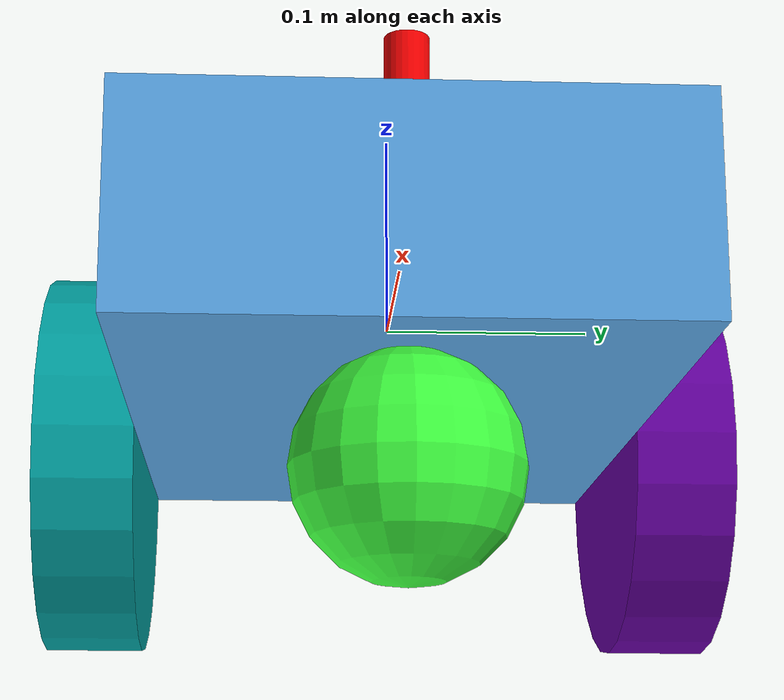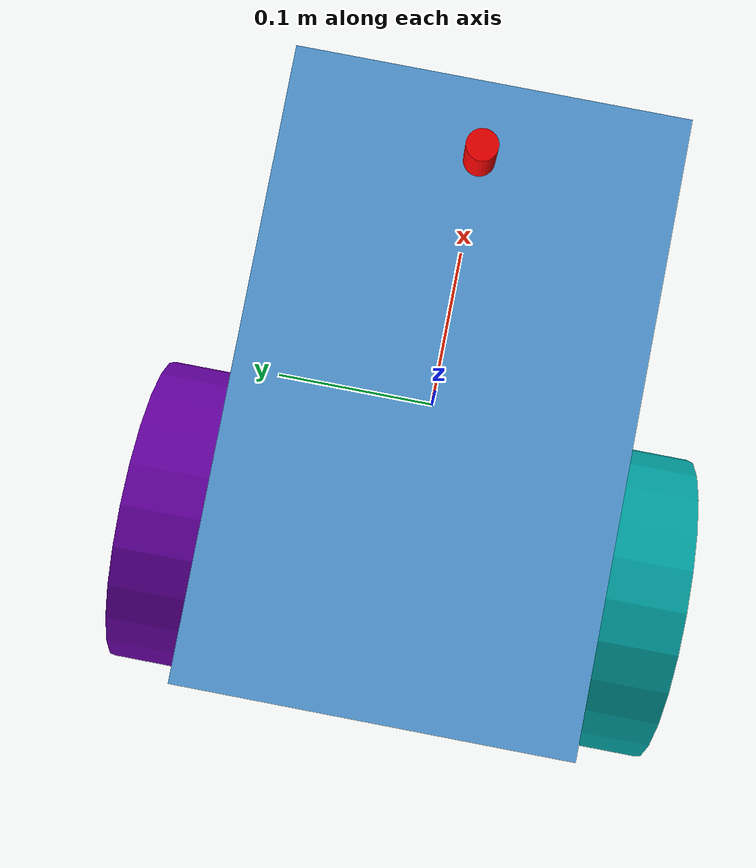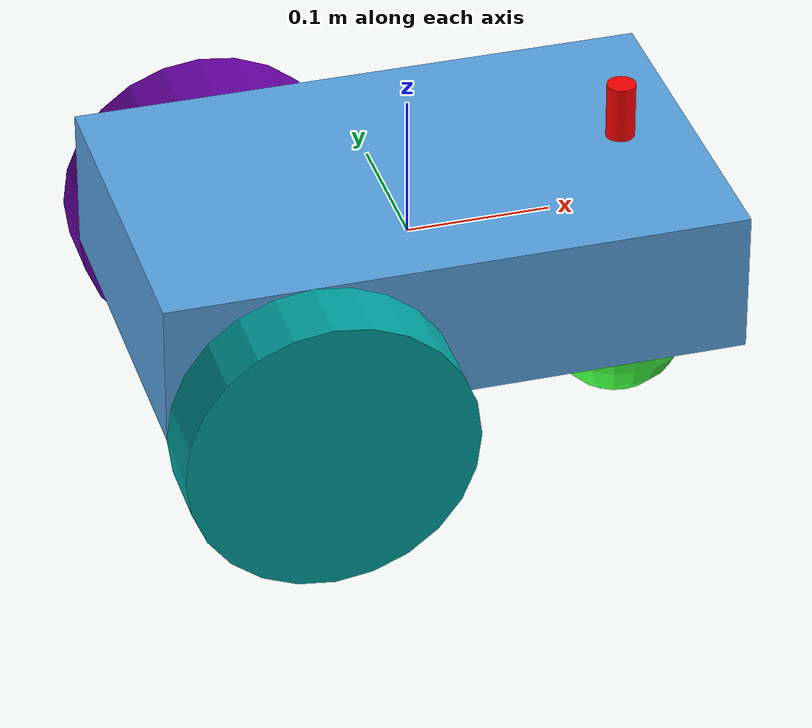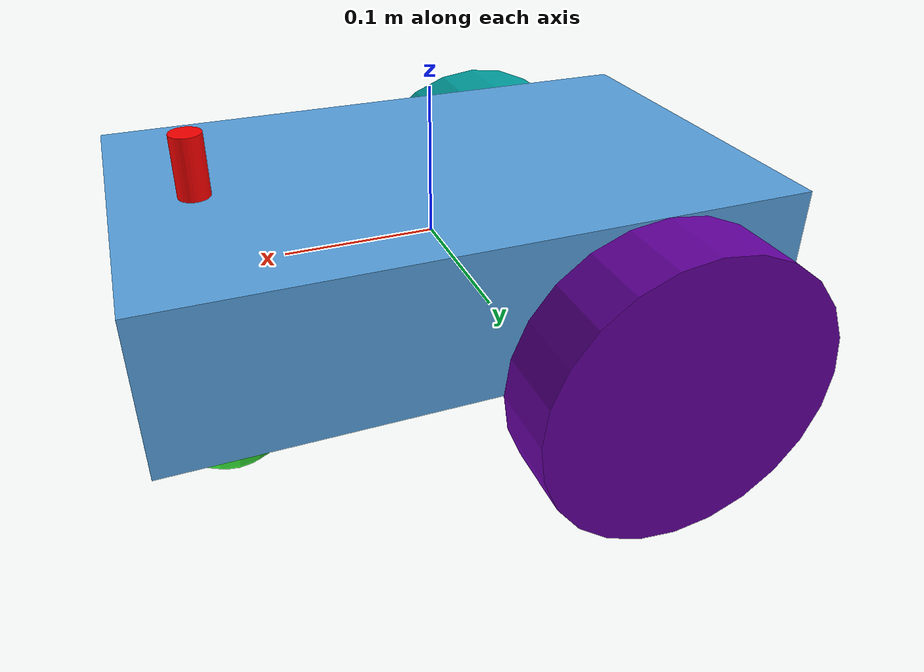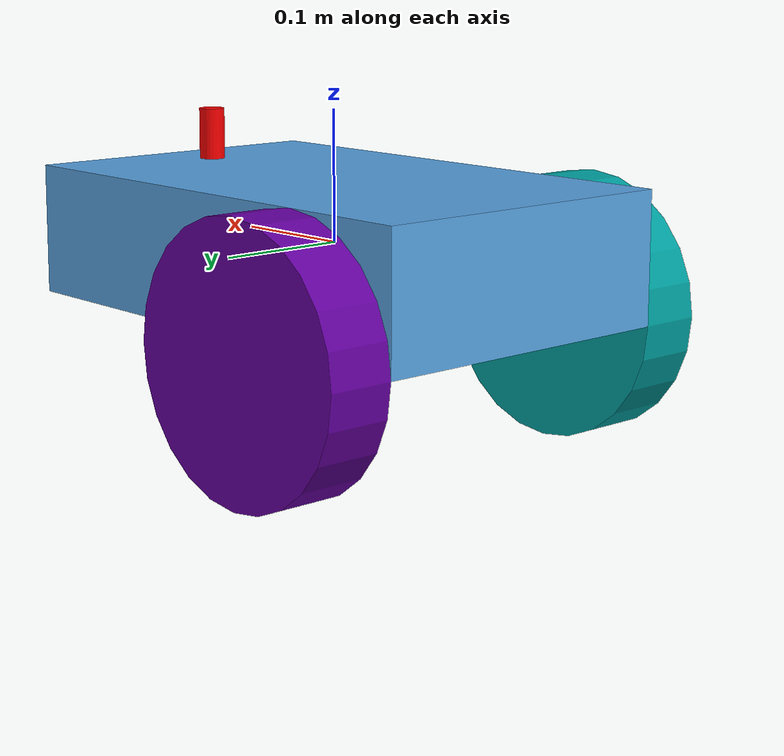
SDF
<sdf version='1.11'>
  <model name='diff_drive'>
    <link name='base_link'>
      <inertial>
        <pose>0.0084905660377358506 0 -0.004056603773584906 0 0 0</pose>
        <mass>10.6</mass>
        <inertia>
          <ixx>0.47958915173094668</ixx>
          <ixy>0</ixy>
          <ixz>0.0060849056603773594</ixz>
          <iyy>1.13013750078755</iyy>
          <iyz>0</iyz>
          <izz>1.468259434749815</izz>
        </inertia>
      </inertial>
      <collision name='base_link_collision'>
        <pose>0 0 0 0 0 0</pose>
        <geometry>
          <box>
            <size>0.40000000000000002 0.25 0.10000000000000001</size>
          </box>
        </geometry>
        <surface>
          <contact>
            <ode/>
          </contact>
          <friction>
            <ode>
              <mu>1</mu>
              <mu2>1</mu2>
            </ode>
          </friction>
        </surface>
      </collision>
      <collision name='base_link_fixed_joint_lump__diff_drive/caster_collision_1'>
        <pose>0.14999999999999999 0 -0.10000000000000001 0 0 0</pose>
        <geometry>
          <sphere>
            <radius>0.050000000000000003</radius>
          </sphere>
        </geometry>
        <surface>
          <contact>
            <ode/>
          </contact>
          <friction>
            <ode>
              <mu>9.9999999999999995e-07</mu>
              <mu2>9.9999999999999995e-07</mu2>
            </ode>
          </friction>
        </surface>
      </collision>
      <collision name='base_link_fixed_joint_lump__diff_drive/lidar_collision_2'>
        <pose>0.14999999999999999 0 0.070000000000000007 0 0 0</pose>
        <geometry>
          <cylinder>
            <length>0.040000000000000001</length>
            <radius>0.01</radius>
          </cylinder>
        </geometry>
        <surface>
          <contact>
            <ode/>
          </contact>
          <friction>
            <ode>
              <mu>1</mu>
              <mu2>1</mu2>
            </ode>
          </friction>
        </surface>
      </collision>
      <visual name='base_link_visual'>
        <pose>0 0 0 0 0 0</pose>
        <geometry>
          <box>
            <size>0.40000000000000002 0.25 0.10000000000000001</size>
          </box>
        </geometry>
        <material>
          <diffuse>0.343137264 0.637254953 0.882352948 1</diffuse>
          <ambient>0.343137264 0.637254953 0.882352948 1</ambient>
        </material>
      </visual>
      <visual name='base_link_fixed_joint_lump__diff_drive/caster_visual_1'>
        <pose>0.14999999999999999 0 -0.10000000000000001 0 0 0</pose>
        <geometry>
          <sphere>
            <radius>0.050000000000000003</radius>
          </sphere>
        </geometry>
        <material>
          <diffuse>0.24509804 1 0.24509804 1</diffuse>
          <ambient>0.24509804 1 0.24509804 1</ambient>
        </material>
      </visual>
      <visual name='base_link_fixed_joint_lump__diff_drive/lidar_visual_2'>
        <pose>0.14999999999999999 0 0.070000000000000007 0 0 0</pose>
        <geometry>
          <cylinder>
            <length>0.040000000000000001</length>
            <radius>0.01</radius>
          </cylinder>
        </geometry>
        <material>
          <diffuse>0.980392158 0 0 1</diffuse>
          <ambient>0.980392158 0 0 1</ambient>
        </material>
      </visual>
      <sensor name='lidar_sensor' type='gpu_lidar'>
        <topic>/lidar</topic>
        <update_rate>10</update_rate>
        <lidar>
          <scan>
            <horizontal>
              <samples>36</samples>
              <resolution>1</resolution>
              <min_angle>-3.1415899999999999</min_angle>
              <max_angle>3.1415899999999999</max_angle>
            </horizontal>
          </scan>
          <range>
            <min>0.10000000000000001</min>
            <max>30</max>
            <resolution>0.01</resolution>
          </range>
          <noise>
            <type>gaussian</type>
            <mean>0</mean>
            <stddev>0.01</stddev>
          </noise>
        </lidar>
        <always_on>true</always_on>
        <visualize>true</visualize>
        <pose>0.14999999999999999 0 0.070000000000000007 0 0 0</pose>
        <frame_id>lidar</frame_id>
      </sensor>
    </link>
    <joint name='left_wheel_joint' type='revolute'>
      <pose relative_to='base_link'>-0.10000000000000001 0.14999999999999999 -0.050000000000000003 0 0 0</pose>
      <parent>base_link</parent>
      <child>left_wheel</child>
      <axis>
        <xyz>0 1 0</xyz>
        <limit>
          <effort>100</effort>
          <velocity>10</velocity>
          <lower>-inf</lower>
          <upper>inf</upper>
        </limit>
        <dynamics>
          <damping>0.10000000000000001</damping>
          <friction>0.10000000000000001</friction>
          <spring_reference>0</spring_reference>
          <spring_stiffness>0</spring_stiffness>
        </dynamics>
      </axis>
    </joint>
    <link name='left_wheel'>
      <pose relative_to='left_wheel_joint'>0 0 0 0 0 0</pose>
      <inertial>
        <pose>0 0 0 1.5707949999999999 0 0</pose>
        <mass>2</mass>
        <inertia>
          <ixx>0.0038288160421875018</ixx>
          <ixy>0</ixy>
          <ixz>0</ixz>
          <iyy>0.0038288160421875018</iyy>
          <iyz>0</iyz>
          <izz>0.0070685834625000034</izz>
        </inertia>
      </inertial>
      <collision name='left_wheel_collision'>
        <pose>0 0 0 1.5707949999999999 0 0</pose>
        <geometry>
          <cylinder>
            <length>0.050000000000000003</length>
            <radius>0.10000000000000001</radius>
          </cylinder>
        </geometry>
        <surface>
          <contact>
            <ode/>
          </contact>
          <friction>
            <ode>
              <mu>1</mu>
              <mu2>1</mu2>
            </ode>
          </friction>
        </surface>
      </collision>
      <visual name='left_wheel_visual'>
        <pose>0 0 0 1.5707949999999999 0 0</pose>
        <geometry>
          <cylinder>
            <length>0.050000000000000003</length>
            <radius>0.10000000000000001</radius>
          </cylinder>
        </geometry>
        <material>
          <diffuse>0.392156869 0 0.627451003 1</diffuse>
          <ambient>0.392156869 0 0.627451003 1</ambient>
        </material>
      </visual>
    </link>
    <joint name='right_wheel_joint' type='revolute'>
      <pose relative_to='base_link'>-0.10000000000000001 -0.14999999999999999 -0.050000000000000003 0 0 0</pose>
      <parent>base_link</parent>
      <child>right_wheel</child>
      <axis>
        <xyz>0 1 0</xyz>
        <limit>
          <effort>100</effort>
          <velocity>10</velocity>
          <lower>-inf</lower>
          <upper>inf</upper>
        </limit>
        <dynamics>
          <damping>0.10000000000000001</damping>
          <friction>0.10000000000000001</friction>
          <spring_reference>0</spring_reference>
          <spring_stiffness>0</spring_stiffness>
        </dynamics>
      </axis>
    </joint>
    <link name='right_wheel'>
      <pose relative_to='right_wheel_joint'>0 0 0 0 0 0</pose>
      <inertial>
        <pose>0 0 0 1.5707949999999999 0 0</pose>
        <mass>2</mass>
        <inertia>
          <ixx>0.0038288160421875018</ixx>
          <ixy>0</ixy>
          <ixz>0</ixz>
          <iyy>0.0038288160421875018</iyy>
          <iyz>0</iyz>
          <izz>0.0070685834625000034</izz>
        </inertia>
      </inertial>
      <collision name='right_wheel_collision'>
        <pose>0 0 0 1.5707949999999999 0 0</pose>
        <geometry>
          <cylinder>
            <length>0.050000000000000003</length>
            <radius>0.10000000000000001</radius>
          </cylinder>
        </geometry>
        <surface>
          <contact>
            <ode/>
          </contact>
          <friction>
            <ode>
              <mu>1</mu>
              <mu2>1</mu2>
            </ode>
          </friction>
        </surface>
      </collision>
      <visual name='right_wheel_visual'>
        <pose>0 0 0 1.5707949999999999 0 0</pose>
        <geometry>
          <cylinder>
            <length>0.050000000000000003</length>
            <radius>0.10000000000000001</radius>
          </cylinder>
        </geometry>
        <material>
          <diffuse>0 0.627451003 0.627451003 1</diffuse>
          <ambient>0 0.627451003 0.627451003 1</ambient>
        </material>
      </visual>
    </link>
    <plugin name='gz::sim::systems::DiffDrive' filename='gz-sim-diff-drive-system'>
      <left_joint>left_wheel_joint</left_joint>
      <right_joint>right_wheel_joint</right_joint>
      <wheel_separation>0.3</wheel_separation>
      <wheel_radius>0.1</wheel_radius>
      <odom_publish_frequency>30</odom_publish_frequency>
      <max_wheel_torque>2.0</max_wheel_torque>
      <max_wheel_acceleration>0.75</max_wheel_acceleration>
      <topic>/cmd_vel</topic>
      <odom_topic>/odom</odom_topic>
      <frame_id>odom</frame_id>
      <child_frame_id>base_link</child_frame_id>
      <tf_topic>/tf</tf_topic>
    </plugin>
    <plugin name='gz::sim::systems::JointStatePublisher' filename='gz-sim-joint-state-publisher-system'>
      <topic>/joint_states</topic>
      <publish_tf>false</publish_tf>
    </plugin>
    <plugin name='gz::sim::systems::PosePublisher' filename='gz-sim-pose-publisher-system'>
      <publish_link_pose>true</publish_link_pose>
      <publish_sensor_pose>false</publish_sensor_pose>
      <publish_collision_pose>false</publish_collision_pose>
      <publish_visual_pose>false</publish_visual_pose>
      <publish_nested_model_pose>true</publish_nested_model_pose>
      <use_pose_vector_msg>true</use_pose_vector_msg>
      <static_publisher>false</static_publisher>
      <update_frequency>30</update_frequency>
      <topic>/model/diff_drive/pose</topic>
    </plugin>
    <plugin name='gz::sim::systems::Sensors' filename='gz-sim-sensors-system'>
      <render_engine>ogre2</render_engine>
    </plugin>
    <frame name='caster_joint' attached_to='base_link'>
      <pose>0.14999999999999999 0 -0.10000000000000001 0 0 0</pose>
    </frame>
    <frame name='caster' attached_to='caster_joint'>
      <pose>0 0 0 0 0 0</pose>
    </frame>
    <frame name='lidar_joint' attached_to='base_link'>
      <pose>0.14999999999999999 0 0.070000000000000007 0 0 0</pose>
    </frame>
    <frame name='lidar' attached_to='lidar_joint'>
      <pose>0 0 0 0 0 0</pose>
    </frame>
  </model>
</sdf>
